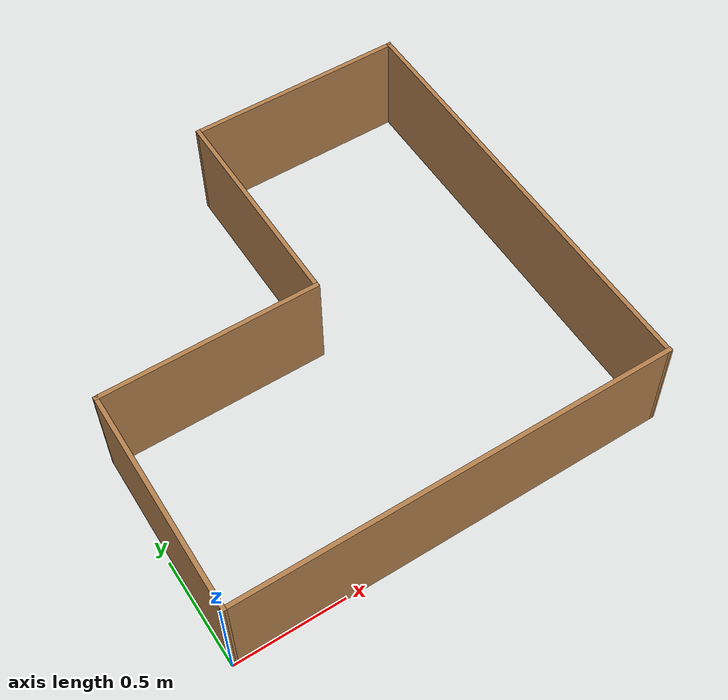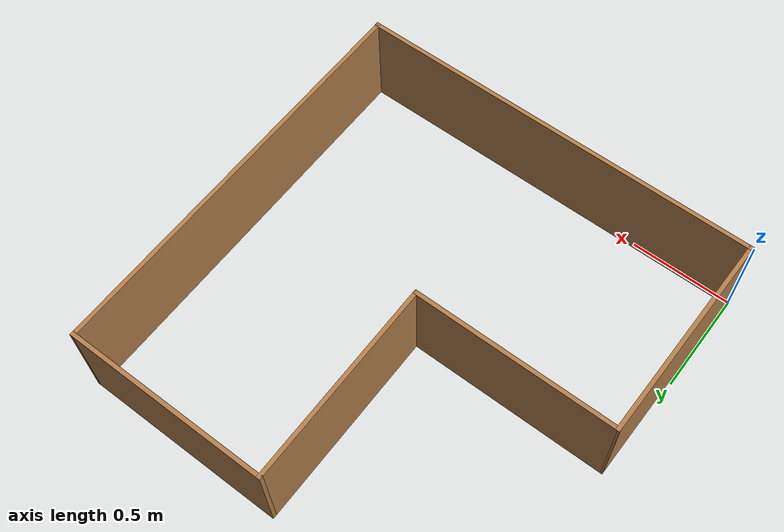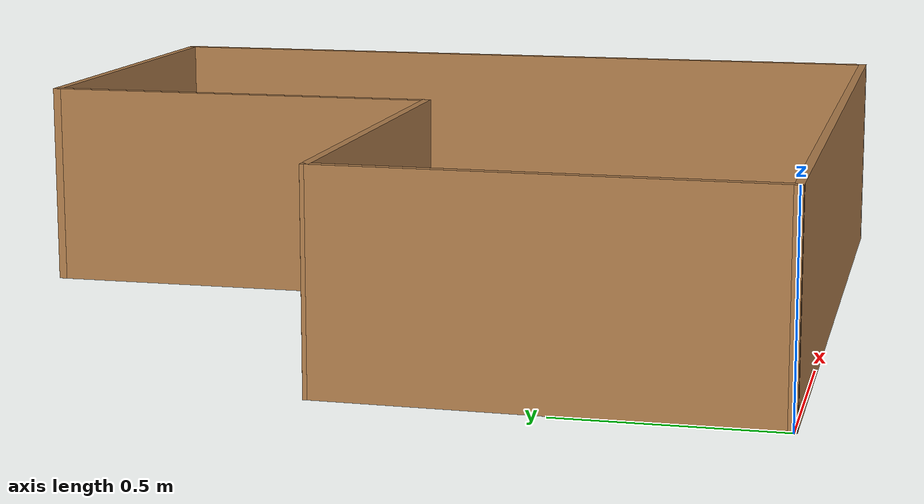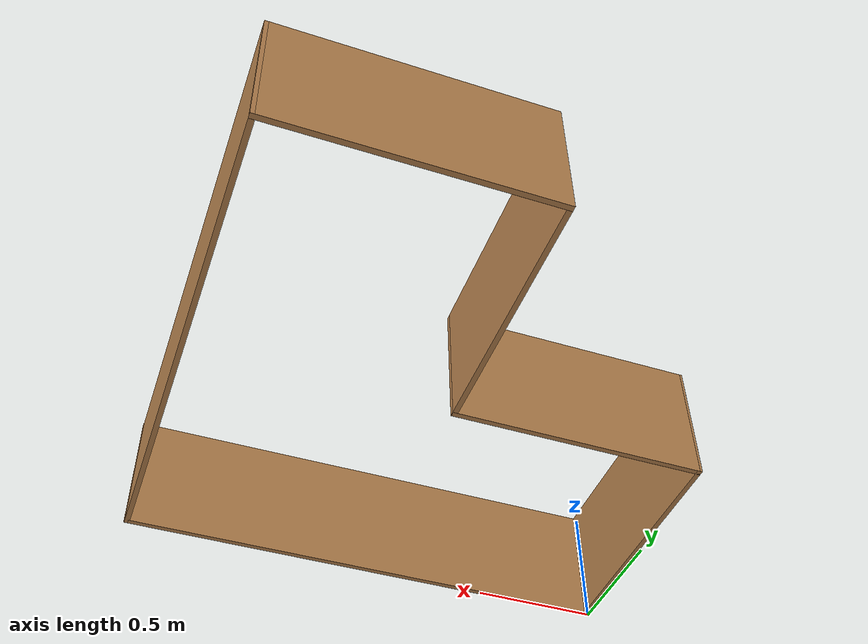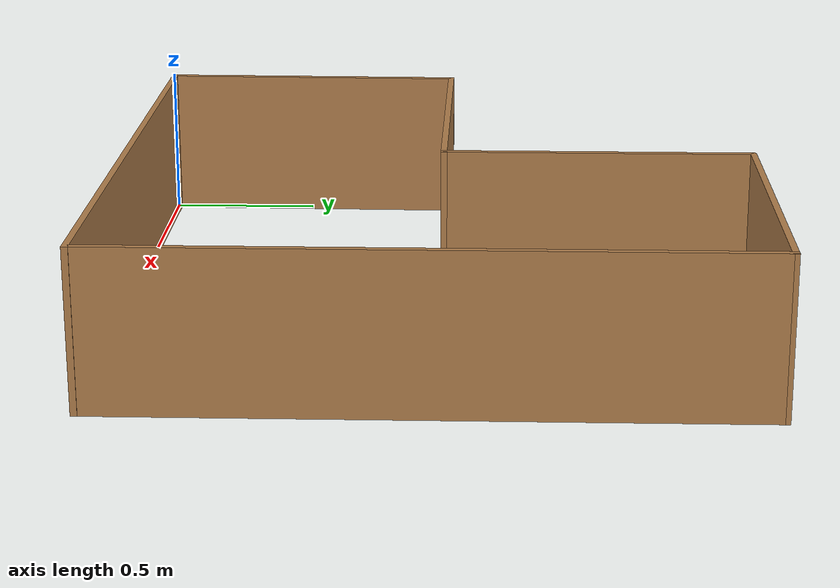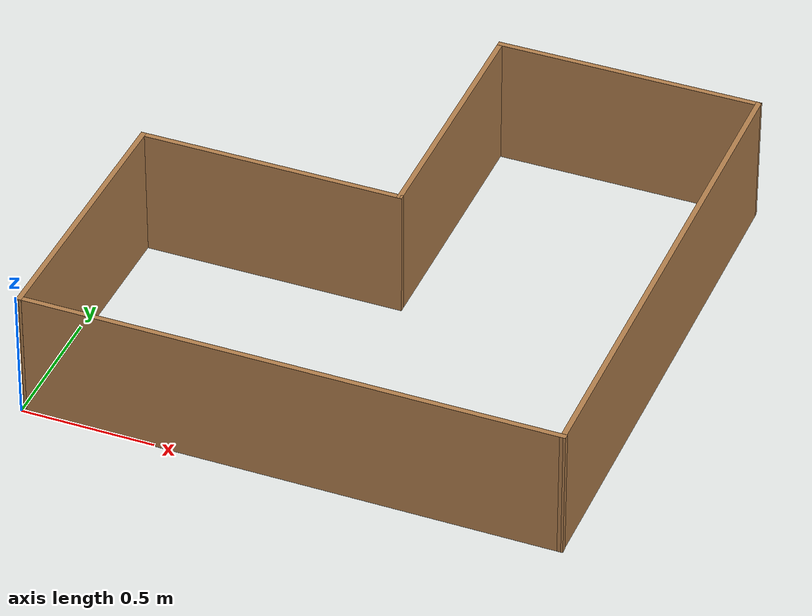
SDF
<?xml version='1.0'?>
<sdf version='1.6'>
  <model name='Motion2v2'>
    <pose frame=''>1.0034 0.998875 0 0 -0 0</pose>
    <link name='Wall_0'>
      <collision name='Wall_0_Collision'>
        <geometry>
          <box>
            <size>2 0.02 0.5</size>
          </box>
        </geometry>
        <pose frame=''>0 0 0.25 0 -0 0</pose>
      </collision>
      <visual name='Wall_0_Visual'>
        <pose frame=''>0 0 0.25 0 -0 0</pose>
        <geometry>
          <box>
            <size>2 0.02 0.5</size>
          </box>
        </geometry>
        <material>
          <script>
            <uri>file://media/materials/scripts/gazebo.material</uri>
            <name>Gazebo/Wood</name>
          </script>
          <ambient>1 1 1 1</ambient>
        </material>
        <meta>
          <layer>0</layer>
        </meta>
      </visual>
      <pose frame=''>6.2e-05 -0.994721 0 0 -0 0</pose>
    </link>
    <link name='Wall_12'>
      <collision name='Wall_12_Collision'>
        <geometry>
          <box>
            <size>1.02963 0.02 0.5</size>
          </box>
        </geometry>
        <pose frame=''>0 0 0.25 0 -0 0</pose>
      </collision>
      <visual name='Wall_12_Visual'>
        <pose frame=''>0 0 0.25 0 -0 0</pose>
        <geometry>
          <box>
            <size>1.02963 0.02 0.5</size>
          </box>
        </geometry>
        <material>
          <script>
            <uri>file://media/materials/scripts/gazebo.material</uri>
            <name>Gazebo/Wood</name>
          </script>
          <ambient>1 1 1 1</ambient>
        </material>
        <meta>
          <layer>0</layer>
        </meta>
      </visual>
      <pose frame=''>-0.983685 -0.489945 0 0 -0 1.55841</pose>
    </link>
    <link name='Wall_2'>
      <collision name='Wall_2_Collision'>
        <geometry>
          <box>
            <size>2.00956 0.02 0.5</size>
          </box>
        </geometry>
        <pose frame=''>0 0 0.25 0 -0 0</pose>
      </collision>
      <visual name='Wall_2_Visual'>
        <pose frame=''>0 0 0.25 0 -0 0</pose>
        <geometry>
          <box>
            <size>2.00956 0.02 0.5</size>
          </box>
        </geometry>
        <material>
          <script>
            <uri>file://media/materials/scripts/gazebo.material</uri>
            <name>Gazebo/Wood</name>
          </script>
          <ambient>1 1 1 1</ambient>
        </material>
        <meta>
          <layer>0</layer>
        </meta>
      </visual>
      <pose frame=''>0.987382 5.5e-05 0 0 -0 1.57186</pose>
    </link>
    <link name='Wall_4'>
      <collision name='Wall_4_Collision'>
        <geometry>
          <box>
            <size>1.00376 0.02 0.5</size>
          </box>
        </geometry>
        <pose frame=''>0 0 0.25 0 -0 0</pose>
      </collision>
      <visual name='Wall_4_Visual'>
        <pose frame=''>0 0 0.25 0 -0 0</pose>
        <geometry>
          <box>
            <size>1.00376 0.02 0.5</size>
          </box>
        </geometry>
        <material>
          <script>
            <uri>file://media/materials/scripts/gazebo.material</uri>
            <name>Gazebo/Wood</name>
          </script>
          <ambient>1 1 1 1</ambient>
        </material>
        <meta>
          <layer>0</layer>
        </meta>
      </visual>
      <pose frame=''>0.494449 0.994831 0 0 -0 3.14159</pose>
    </link>
    <link name='Wall_6'>
      <collision name='Wall_6_Collision'>
        <geometry>
          <box>
            <size>1 0.02 0.5</size>
          </box>
        </geometry>
        <pose frame=''>0 0 0.25 0 -0 0</pose>
      </collision>
      <visual name='Wall_6_Visual'>
        <pose frame=''>0 0 0.25 0 -0 0</pose>
        <geometry>
          <box>
            <size>1 0.02 0.5</size>
          </box>
        </geometry>
        <material>
          <script>
            <uri>file://media/materials/scripts/gazebo.material</uri>
            <name>Gazebo/Wood</name>
          </script>
          <ambient>1 1 1 1</ambient>
        </material>
        <meta>
          <layer>0</layer>
        </meta>
      </visual>
      <pose frame=''>0.002569 0.504831 0 0 -0 -1.5708</pose>
    </link>
    <link name='Wall_8'>
      <collision name='Wall_8_Collision'>
        <geometry>
          <box>
            <size>1 0.02 0.5</size>
          </box>
        </geometry>
        <pose frame=''>0 0 0.25 0 -0 0</pose>
      </collision>
      <visual name='Wall_8_Visual'>
        <pose frame=''>0 0 0.25 0 -0 0</pose>
        <geometry>
          <box>
            <size>1 0.02 0.5</size>
          </box>
        </geometry>
        <material>
          <script>
            <uri>file://media/materials/scripts/gazebo.material</uri>
            <name>Gazebo/Wood</name>
          </script>
          <ambient>1 1 1 1</ambient>
        </material>
        <meta>
          <layer>0</layer>
        </meta>
      </visual>
      <pose frame=''>-0.487431 0.014831 0 0 -0 3.14159</pose>
    </link>
    <static>1</static>
  </model>
</sdf>
